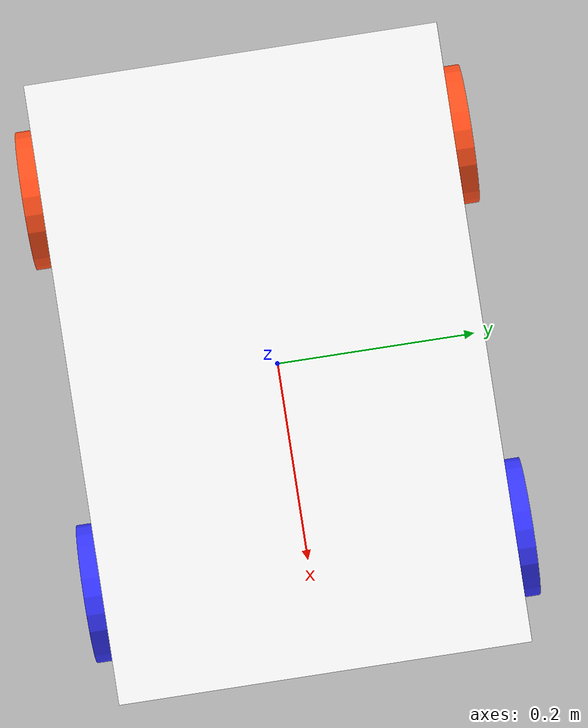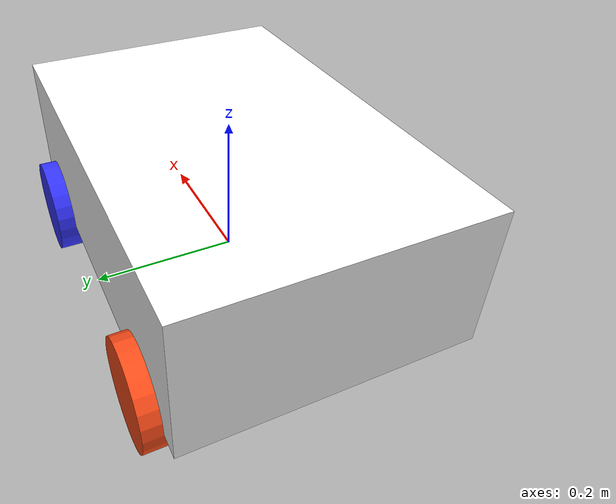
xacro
<?xml version="1.0"?>
<robot xmlns:xacro="http://www.ros.org/wiki/xacro" >

    <xacro:include filename="inertial_macros.xacro"/>

    <material name="white">
        <color rgba="1 1 1 1" />
    </material>

    <material name="orange">
        <color rgba="1 0.3 0.1 1"/>
    </material>

    <material name="blue">
        <color rgba="0.2 0.2 1 1"/>
    </material>

    <material name="black">
        <color rgba="0 0 0 1"/>
    </material>

    <material name="green">
        <color rgba="0 1 0 1"/>
    </material>

    <!-- BASE LINK -->

    <link name="base_link">

    </link>

    <!-- BASE FOOTPRINT LINK -->

    <joint name="base_footprint_joint" type="fixed">
        <parent link="base_link"/>
        <child link="base_footprint"/>
        <origin xyz="0 0 0" rpy="0 0 0"/>
    </joint>

    <link name="base_footprint">

    </link>

    <!-- CHASSIS LINK -->

    <joint name="chassis_joint" type="fixed">
        <parent link="base_link"/>
        <child link="chassis"/>
        <origin xyz="0 0 0"/>
    </joint>

    <link name="chassis">
        <visual>
            <origin xyz="0 0 0.1"/>
            <geometry>
                <box size="0.6 0.4 0.2"/>
            </geometry>
            <material name="white"/>
        </visual>
        <collision>
            <origin xyz="0 0 0.1"/>
            <geometry>
                <box size="0.6 0.4 0.2"/>
            </geometry>
        </collision>
        <xacro:inertial_box mass="1.0" x="0.6" y="0.4" z="0.2">
            <origin xyz="0 0 0.1" rpy="0 0 0"/>
        </xacro:inertial_box>
    </link>

    <gazebo reference="chassis">
        <material>Gazebo/White</material>
    </gazebo>

    <!-- LEFT WHEEL LINK -->

    <joint name="rear_left_wheel_joint" type="fixed">
        <parent link="chassis"/>
        <child link="rear_left_wheel"/>
        <origin xyz="-0.2 0.2 0" rpy="-${pi/2} 0 0" />
        <axis xyz="0 0 1"/>
    </joint>

    <link name="rear_left_wheel">
        <visual>
            <geometry>
                <cylinder radius="0.07" length="0.05"/>
            </geometry>
            <material name="orange"/>
        </visual>
        <collision>
            <geometry>
                <cylinder radius="0.07" length="0.05"/>
            </geometry>
        </collision>
        <xacro:inertial_cylinder mass="0.2" length="0.05" radius="0.07">
            <origin xyz="0 0 0" rpy="0 0 0"/>
        </xacro:inertial_cylinder>
    </link>

    <gazebo reference="rear_left_wheel">
        <material>Gazebo/Orange</material>
        <mu1 value = "0.001"/>
        <mu2 value = "0.001"/>
    </gazebo>

    <!-- RIGHT WHEEL LINK -->

    <joint name="rear_right_wheel_joint" type="fixed">
        <parent link="chassis"/>
        <child link="rear_right_wheel"/>
        <origin xyz="-0.2 -0.2 0" rpy="${pi/2} 0 0" />
        <axis xyz="0 0 -1"/>
    </joint>

    <link name="rear_right_wheel">
        <visual>
            <geometry>
                <cylinder radius="0.07" length="0.05"/>
            </geometry>
            <material name="orange"/>
        </visual>
        <collision>
            <geometry>
                <cylinder radius="0.07" length="0.05"/>
            </geometry>
        </collision>
        <xacro:inertial_cylinder mass="0.2" length="0.05" radius="0.07">
            <origin xyz="0 0 0" rpy="0 0 0"/>
        </xacro:inertial_cylinder>
    </link>

    <gazebo reference="rear_right_wheel">
        <material>Gazebo/Orange</material>
        <mu1 value = "0.001"/>
        <mu2 value = "0.001"/>
    </gazebo>

    <joint name="front_left_wheel_joint" type="continuous">
        <parent link="base_link"/>
        <child link="front_left_wheel"/>
        <origin xyz="0.2 0.2 0" rpy="-${pi/2} 0 0" />
        <axis xyz="0 0 1"/>
        <limit effort="100" velocity="1.0" lower="-0.5" upper="0.5"/>
    </joint>

    <link name="front_left_wheel">
        <visual>
            <geometry>
                <cylinder radius="0.07" length="0.05"/>
            </geometry>
            <material name="blue"/>
        </visual>
        <collision>
            <geometry>
                <cylinder radius="0.07" length="0.05"/>
            </geometry>
        </collision>
        <xacro:inertial_cylinder mass="0.2" length="0.05" radius="0.07">
            <origin xyz="0 0 0" rpy="0 0 0"/>
        </xacro:inertial_cylinder>
    </link>

    <gazebo reference="front_left_wheel">
        <material>Gazebo/Blue</material>
    </gazebo>

    <joint name="front_right_wheel_joint" type="continuous">
        <parent link="base_link"/>
        <child link="front_right_wheel"/>
        <origin xyz="0.2 -0.2 0" rpy="${pi/2} 0 0" />
        <axis xyz="0 0 -1"/>
        <limit effort="100" velocity="1.0" lower="-0.5" upper="0.5"/>
    </joint>

    <link name="front_right_wheel">
        <visual>
            <geometry>
                <cylinder radius="0.07" length="0.05"/>
            </geometry>
            <material name="blue"/>
        </visual>
        <collision>
            <geometry>
                <cylinder radius="0.07" length="0.05"/>
            </geometry>
        </collision>
        <xacro:inertial_cylinder mass="0.2" length="0.05" radius="0.07">
            <origin xyz="0 0 0" rpy="0 0 0"/>
        </xacro:inertial_cylinder>
    </link>

    <gazebo reference="front_right_wheel">
        <material>Gazebo/Blue</material>
    </gazebo>

</robot>

    <!-- CASTER WHEEL LINK -->
    <joint name="ship_joint" type="fixed">
        <parent link="base_link"/>
        <child link="ship_chassis"/>
        <origin xyz="2 -1 0" rpy="0 0 0"/>
    </joint>

    <!-- Chassis -->
    <link name="ship_chassis">
        <!-- Main rectangular body (rear part) -->
        <visual>
            <geometry>
                <box size="0.6 0.4 0.2"/> <!-- Size of the main body -->
            </geometry>
            <material name="green"/>
        </visual>

        <collision>
            <geometry>
                <box size="0.6 0.4 0.2"/>
            </geometry>
        </collision>

        <!-- Front circular part -->
        <visual>
            <geometry>
                <cylinder radius="0.2" length="0.2"/> <!-- Front rounded part (cylinder) -->
            </geometry>
            <origin xyz="0.3 0 0" rpy="0 0 0"/> <!-- Position it at the front -->
            <material name="green"/>
        </visual>

        <collision>
            <geometry>
                <cylinder radius="0.2" length="0.2"/>
            </geometry>
            <origin xyz="0.3 0 0" rpy="0 0 0"/>
        </collision>

        <!-- Inertial properties of the chassis -->
        <inertial>
            <mass value="1.0"/>
            <inertia  ixx="0.01" ixy="0" ixz="0" iyy="0.01" iyz="0" izz="0.01"/>
        </inertial>
    </link>

    <gazebo reference="ship_chassis">
        <material>Gazebo/Green</material>
    </gazebo> -->
